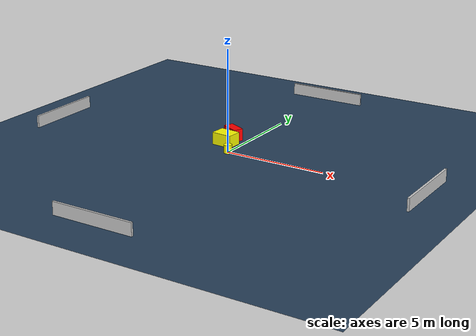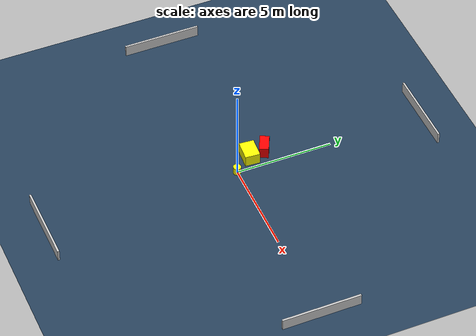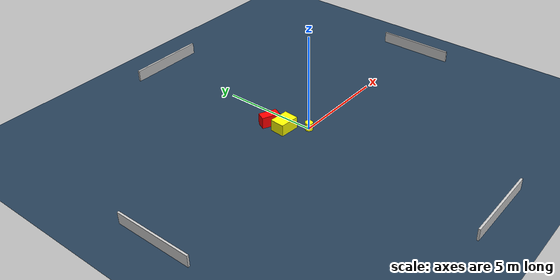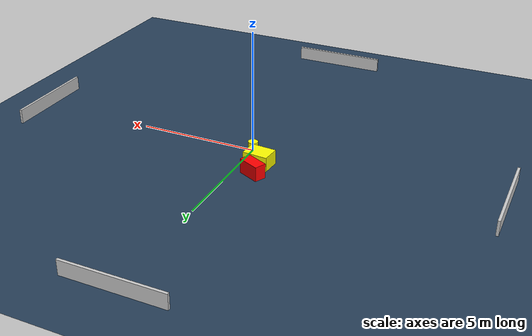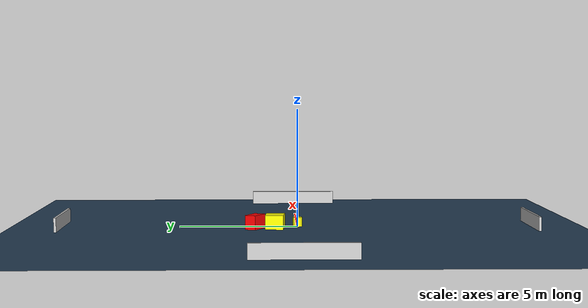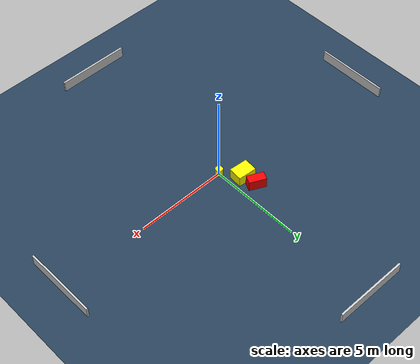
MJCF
<?xml version="1.0" ?>
<mujoco model="generated_environment">
  <option timestep="0.01" integrator="RK4" cone="elliptic"/>
  <default>
    <geom density="1"/>
  </default>
  <asset>
    <texture builtin="gradient" height="3072" name="skybox" rgb1="0.3 0.5 0.7" rgb2="0 0 0" type="skybox" width="512"/>
    <texture builtin="checker" height="300" name="groundplane" rgb1="0.2 0.3 0.4" rgb2="0.1 0.2 0.3" type="2d" width="300"/>
    <material name="groundplane" reflectance="0.2" texrepeat="5 5" texture="groundplane"/>
  </asset>
  <worldbody>
    <light dir="0 0 -1" directional="true" pos="0 0 1.5"/>
    <geom condim="3" friction="0.5 0.005 0.001" material="groundplane" name="floor" pos="0 0 0" size="0 0 0.05" type="plane"/>
    <body name="walls">
      <geom name="wall_1" condim="4" pos="-10.0 0.0 0.3" rgba="0.800000011920929 0.800000011920929 0.800000011920929 1.0" size="0.05 2.0 0.3" type="box"/>
      <geom name="wall_2" condim="4" pos="10.0 0.0 0.3" rgba="0.800000011920929 0.800000011920929 0.800000011920929 1.0" size="0.05 2.0 0.3" type="box"/>
      <geom name="wall_3" condim="4" pos="0.0 -10.0 0.3" rgba="0.800000011920929 0.800000011920929 0.800000011920929 1.0" size="2.0 0.05 0.3" type="box"/>
      <geom name="wall_4" condim="4" pos="0.0 10.0 0.3" rgba="0.800000011920929 0.800000011920929 0.800000011920929 1.0" size="2.0 0.05 0.3" type="box"/>
    </body>
    <body name="robot">
      <joint name="joint_x" type="slide" pos="0 0 0" axis="1 0 0"/>
      <joint name="joint_y" type="slide" pos="0 0 0" axis="0 1 0"/>
      <geom name="robot" type="cylinder" pos="0.0 0.0 0.2" size="0.2 0.2 0.0" mass="5.0" friction="1.0 0.005 0.0001" condim="4" rgba="1.0 1.0 0.0 1.0"/>
    </body>
    <body name="obstacle_1_movable">
      <geom name="obstacle_1_movable" condim="4" pos="-0.7181210044379854 0.9631647501113225 0.3" euler="0 0 355.43457141865395" friction="0.0 0.005 0.001" rgba="1.0 1.0 0.0 1.0" size="0.5140459631636027 0.3831909920786657 0.3" type="box" mass="0.1"/>
      <joint type="free"/>
    </body>
    <body name="obstacle_2_static">
      <geom name="obstacle_2_static" condim="4" pos="-0.8348751802816612 1.8060062563151533 0.3" euler="0 0 64.35785569136743" friction="0.0 0.005 0.001" rgba="1.0 0.0 0.0 1.0" size="0.23997563904635155 0.46491444459839104 0.3" type="box"/>
    </body>
  </worldbody>
  <actuator>
    <motor name="actuator_x" joint="joint_x" gear="1" ctrlrange="-1 1"/>
    <motor name="actuator_y" joint="joint_y" gear="1" ctrlrange="-1 1"/>
  </actuator>
</mujoco>
